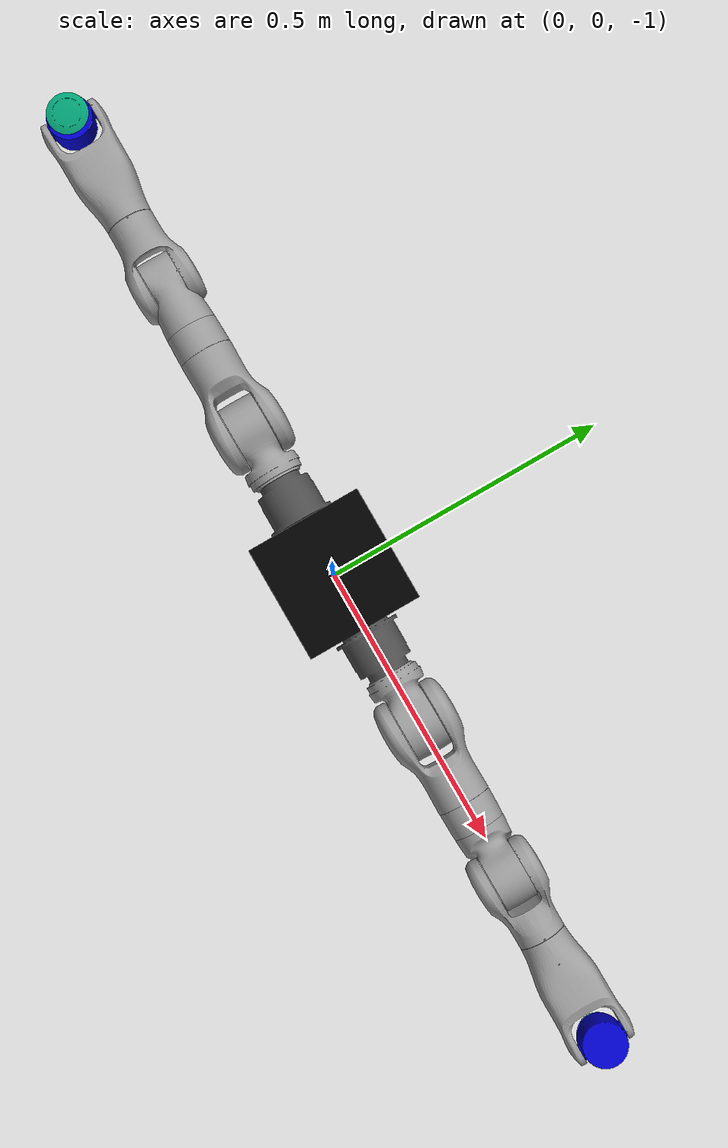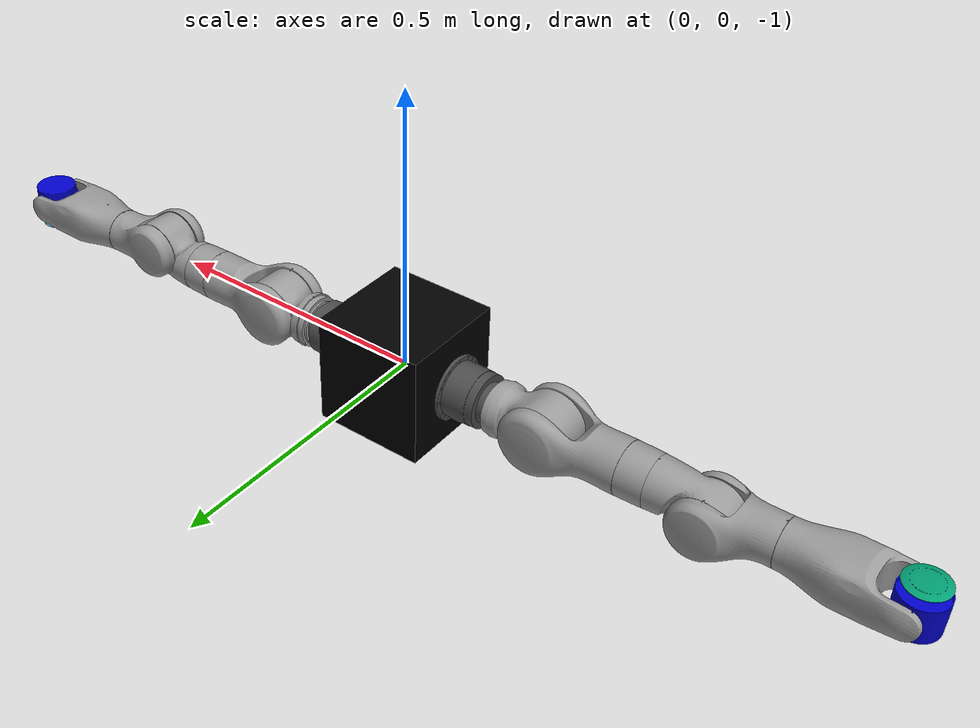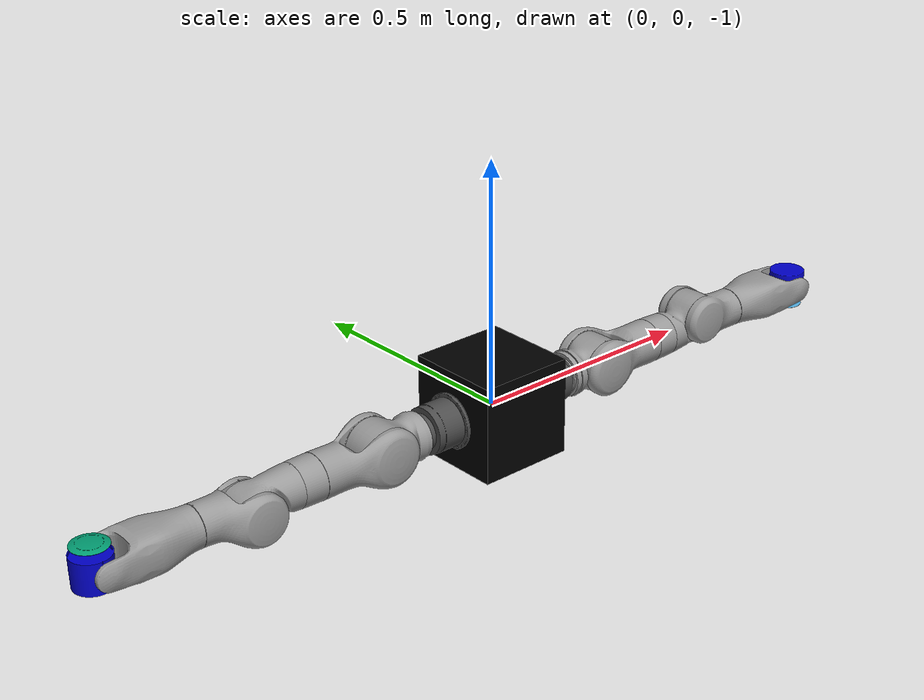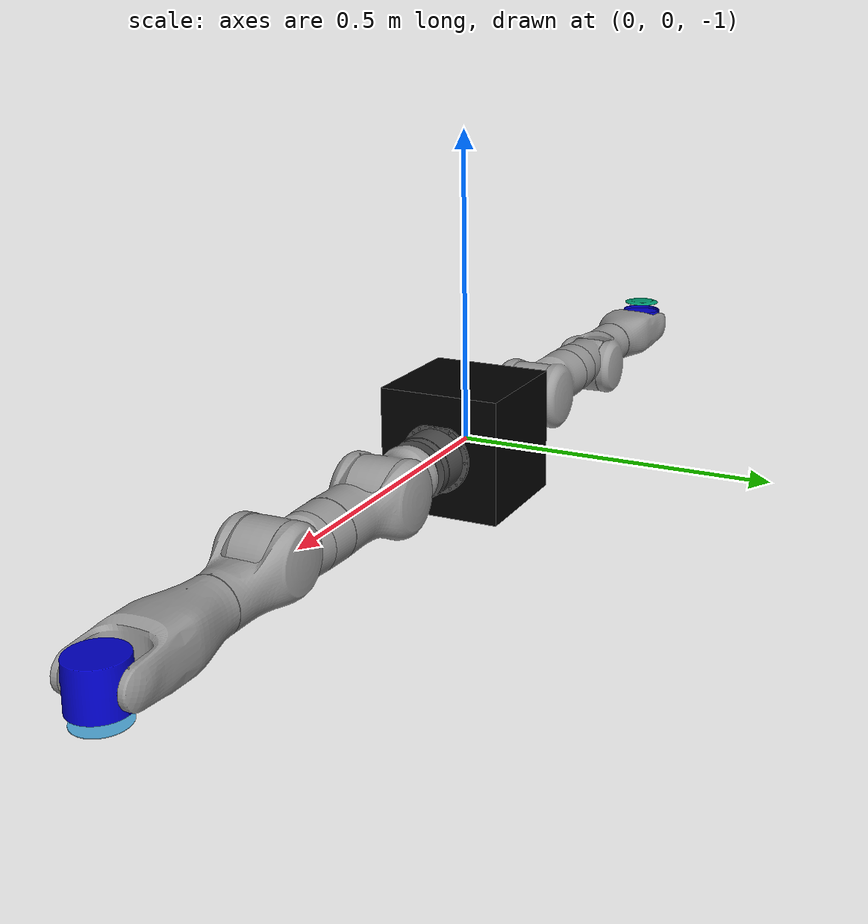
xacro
<?xml version="1.0"?>
<robot xmlns:xacro="http://www.ros.org/wiki/xacro" name="dual_arm">
    <xacro:arg name="initial_positions_file" default="initial_positions.yaml" />

    <!-- Import dual_arm urdf file (no Gazebo ros2_control; MoveIt adds mock hardware below) -->
    <xacro:include filename="$(find dual_arm_description)/urdf/dual_arm.urdf.xacro"/>

    <!-- Import control_xacro -->
    <xacro:include filename="dual_arm.ros2_control.xacro" />

    <xacro:dual_arm_ros2_control name="FakeSystem" initial_positions_file="$(arg initial_positions_file)"/>

</robot>

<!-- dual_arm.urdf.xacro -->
<robot xmlns:xacro="http://www.ros.org/wiki/xacro" name="dual_arm">

  <xacro:arg name="use_gazebo_control" default="false"/>

  <link name="world"/>

    <!-- Central Base -->

  <link name="central_base">
    <visual>
      <origin xyz="0 0 1.0" rpy="0 0 0"/>
      <geometry>
        <box size="0.2 0.2 0.2"/>  <!-- 20cm x 40cm x 10cm metal base -->
      </geometry>
      <material name="black">
        <ambient>0 0 0 1</ambient>
        <diffuse>0 0 0 1</diffuse>
      </material>
    </visual>

    <collision>
      <origin xyz="0 0 1.0" />
      <geometry>
        <box size="0.2 0.2 0.2"/>
      </geometry>
    </collision>
  </link>
  <gazebo reference="central_base">
    <material>
      <ambient>0.0 0.0 0.0 1</ambient>
      <diffuse>0.0 0.0 0.0 1</diffuse>
      <specular>0.1 0.1 0.1 1</specular>
      <emissive>0.0 0.0 0.0 1</emissive>
    </material>
  </gazebo>

  <!-- Fix central base to world -->
  <joint name="world_to_central_base" type="fixed">
    <parent link="world"/>
    <child link="central_base"/>
    <origin xyz="0 0 0" rpy="0 3.14 0"/>
  </joint>

  <!-- Left robot mounted 10cm left -->
  <xacro:include filename="$(find dual_arm_description)/urdf/left_arm.xacro"/>
  <joint name="central_to_left_base" type="fixed">
    <parent link="central_base"/>
    <child link="left_base"/>
    <origin xyz="-0.105 0.0 1.0" rpy="0.0 -1.57 0.0"/>
  </joint>

  <!-- Right robot mounted 10cm right -->
  <xacro:include filename="$(find dual_arm_description)/urdf/right_arm.xacro"/>
  <joint name="central_to_right_base" type="fixed">
    <parent link="central_base"/>
    <child link="right_base"/>
    <origin xyz="0.105 0.0 1.0" rpy="0 1.57 0"/>
  </joint>

  <!-- Import all robot parts -->
  <xacro:include filename="$(find dual_arm_description)/urdf/materials.xacro" />
  <xacro:if value="$(arg use_gazebo_control)">
    <xacro:include filename="$(find dual_arm_description)/urdf/ros2_gazebo_control.xacro" />
  </xacro:if>

</robot>

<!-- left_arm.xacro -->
<xacro:include xmlns:xacro="http://www.ros.org/wiki/xacro">

  <xacro:macro name="left_arm">
    <inertial>
      <mass value="0.1"/>
      <inertia ixx="1e-4" ixy="0" ixz="0" iyy="1e-4" iyz="0" izz="1e-4"/>
    </inertial>
  </xacro:macro>

  <link name="left_base">
    <visual>
      <geometry>
        <mesh filename="file://$(find dual_arm_description)/meshes/BASE_Mesh.obj"/>
      </geometry>
      <material name="dark_grey"/>
    </visual>
    <collision>
      <geometry>
        <mesh filename="file://$(find dual_arm_description)/meshes/BASE_Mesh.obj"/>
      </geometry>
    </collision>
    <xacro:left_arm/>
  </link>

  <!-- left Arm Links -->
  <link name="left_link1">
    <visual>
      <origin xyz="0.0000008 0 0"/>
      <geometry>
        <mesh filename="file://$(find dual_arm_description)/meshes/LINK1_Mesh.obj"/>
      </geometry>
      <material name="grey"/>
    </visual>
    <collision>
      <origin xyz="0.0000008 0 0"/>
      <geometry>
        <mesh filename="file://$(find dual_arm_description)/meshes/LINK1_Mesh.obj"/>
      </geometry>
    </collision>
    <xacro:left_arm/>
  </link>
  <joint name="left_joint1" type="revolute">
    <parent link="left_base"/>
    <child link="left_link1"/>
    <axis xyz="0 0 -1"/>
    <limit lower="-3.1066" upper="3.1066" effort="100" velocity="6.28"/>
  </joint>

  <link name="left_link2">
    <visual>
      <geometry><mesh filename="file://$(find dual_arm_description)/meshes/link2_Mesh.obj"/></geometry>
      <material name="grey"/>
    </visual>
    <collision>
      <geometry><mesh filename="file://$(find dual_arm_description)/meshes/link2_Mesh.obj"/></geometry>
    </collision>
    <xacro:left_arm/>
  </link>
  <joint name="left_joint2" type="revolute">
    <parent link="left_link1"/>
    <child link="left_link2"/>
    <origin xyz="0 0 0.1743"/>
    <axis xyz="0 -1 0"/>
    <limit lower="-2.0943" upper="2.0943" effort="100" velocity="6.28"/>
  </joint>

  <link name="left_link3">
    <visual>
      <origin rpy="0 0 3.1415"/>
      <geometry><mesh filename="file://$(find dual_arm_description)/meshes/LINK3_LOWER_Mesh.obj"/></geometry>
      <material name="grey"/>
    </visual>
    <visual>
      <origin rpy="0 0 3.1415"/>
      <geometry><mesh filename="file://$(find dual_arm_description)/meshes/LINK3_UPPER_Mesh.obj"/></geometry>
      <material name="grey"/>
    </visual>
    <collision>
      <origin rpy="0 0 3.1415"/>
      <geometry><mesh filename="file://$(find dual_arm_description)/meshes/LINK3_LOWER_Mesh.obj"/></geometry>
    </collision>
    <collision>
      <origin rpy="0 0 3.1415"/>
      <geometry><mesh filename="file://$(find dual_arm_description)/meshes/LINK3_UPPER_Mesh.obj"/></geometry>
    </collision>
    <xacro:left_arm/>
  </link>
  <joint name="left_joint3" type="revolute">
    <parent link="left_link2"/>
    <child link="left_link3"/>
    <axis xyz="0 0 1"/>
    <limit lower="-3.1066" upper="3.1066" effort="100" velocity="6.28"/>
  </joint>

  <link name="left_link4">
    <visual>
      <origin rpy="0 0 -3.1415"/>
      <geometry><mesh filename="file://$(find dual_arm_description)/meshes/LINK4_Mesh.obj"/></geometry>
      <material name="grey"/>
    </visual>
    <collision>
      <origin rpy="0 0 -3.1415"/>
      <geometry><mesh filename="file://$(find dual_arm_description)/meshes/LINK4_Mesh.obj"/></geometry>
    </collision>
    <xacro:left_arm/>
  </link>
  <joint name="left_joint4" type="revolute">
    <parent link="left_link3"/>
    <child link="left_link4"/>
    <origin xyz="-0.018 0 0.287"/>
    <axis xyz="0 1 0"/>
    <limit lower="-2.5307" upper="1.0471" effort="100" velocity="6.28"/>
  </joint>

  <link name="left_link5">
    <visual>
      <geometry><mesh filename="file://$(find dual_arm_description)/meshes/LINK5_Mesh.obj"/></geometry>
      <material name="grey"/>
    </visual>
    <collision>
      <geometry><mesh filename="file://$(find dual_arm_description)/meshes/LINK5_Mesh.obj"/></geometry>
    </collision>
    <xacro:left_arm/>
  </link>
  <joint name="left_joint5" type="revolute">
    <parent link="left_link4"/>
    <child link="left_link5"/>
    <origin xyz="0.018 0 0.314"/>
    <axis xyz="0 0 1"/>
    <limit lower="-3.1066" upper="3.1066" effort="100" velocity="6.28"/>
  </joint>

  <link name="left_link6">
    <visual>
      <geometry><mesh filename="file://$(find dual_arm_description)/meshes/LINK6_Mesh.obj"/></geometry>
      <material name="blue"/>
    </visual>
    <collision>
      <geometry><mesh filename="file://$(find dual_arm_description)/meshes/LINK6_Mesh.obj"/></geometry>
    </collision>
    <xacro:left_arm/>
  </link>
  <joint name="left_joint6" type="revolute">
    <parent link="left_link5"/>
    <child link="left_link6"/>
    <axis xyz="0 1 0"/>
    <limit lower="-1.0471" upper="1.0471" effort="100" velocity="6.28"/>
  </joint>

  <link name="left_ttt">
    <visual>
      <origin rpy="3.1415 -1.5707 0"/>
      <geometry><mesh filename="file://$(find dual_arm_description)/meshes/tn__T_Arm_MarvinM6SLCCS_WKe8HJ_01_Mesh.obj"/></geometry>
    </visual>
    <xacro:left_arm/>
  </link>
  <joint name="left_joint7" type="revolute">
    <parent link="left_link6"/>
    <child link="left_ttt"/>
    <axis xyz="1 0 0"/>
    <limit lower="-1.5707" upper="1.5707" effort="100" velocity="6.28"/>
  </joint>

  <link name="left_flange"/>
  <joint name="left_flange_joint" type="fixed">
    <parent link="left_ttt"/>
    <child link="left_flange"/>
    <origin xyz="0 0 0.088"/>
  </joint>

</xacro:include>

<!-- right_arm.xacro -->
<xacro:include xmlns:xacro="http://www.ros.org/wiki/xacro">

  <xacro:macro name="right_arm">
    <inertial>
      <mass value="0.1"/>
      <inertia ixx="1e-4" ixy="0" ixz="0" iyy="1e-4" iyz="0" izz="1e-4"/>
    </inertial>
  </xacro:macro>

  <link name="right_base">
    <visual>
      <geometry>
        <mesh filename="file://$(find dual_arm_description)/meshes/BASE_Mesh.obj"/>
      </geometry>
      <material name="dark_grey"/>
    </visual>
    <collision>
      <geometry>
        <mesh filename="file://$(find dual_arm_description)/meshes/BASE_Mesh.obj"/>
      </geometry>
    </collision>
    <xacro:right_arm/>
  </link>

  <!-- Right Arm Links -->
  <link name="right_link1">
    <visual>
      <origin xyz="0.0000008 0 0"/>
      <geometry>
        <mesh filename="file://$(find dual_arm_description)/meshes/LINK1_Mesh.obj"/>
      </geometry>
      <material name="grey"/>
    </visual>
    <collision>
      <origin xyz="0.0000008 0 0"/>
      <geometry>
        <mesh filename="file://$(find dual_arm_description)/meshes/LINK1_Mesh.obj"/>
      </geometry>
    </collision>
    <xacro:right_arm/>
  </link>
  <joint name="right_joint1" type="revolute">
    <parent link="right_base"/>
    <child link="right_link1"/>
    <axis xyz="0 0 -1"/>
    <limit lower="-3.1066" upper="3.1066" effort="100" velocity="6.28"/>
  </joint>

  <link name="right_link2">
    <visual>
      <geometry><mesh filename="file://$(find dual_arm_description)/meshes/link2_Mesh.obj"/></geometry>
      <material name="grey"/>
    </visual>
    <collision>
      <geometry><mesh filename="file://$(find dual_arm_description)/meshes/link2_Mesh.obj"/></geometry>
    </collision>
    <xacro:right_arm/>
  </link>
  <joint name="right_joint2" type="revolute">
    <parent link="right_link1"/>
    <child link="right_link2"/>
    <origin xyz="0 0 0.1743"/>
    <axis xyz="0 -1 0"/>
    <limit lower="-2.0943" upper="2.0943" effort="100" velocity="6.28"/>
  </joint>

  <link name="right_link3">
    <visual>
      <origin rpy="0 0 3.1415"/>
      <geometry><mesh filename="file://$(find dual_arm_description)/meshes/LINK3_LOWER_Mesh.obj"/></geometry>
      <material name="grey"/>
    </visual>
    <visual>
      <origin rpy="0 0 3.1415"/>
      <geometry><mesh filename="file://$(find dual_arm_description)/meshes/LINK3_UPPER_Mesh.obj"/></geometry>
      <material name="grey"/>
    </visual>
    <collision>
      <origin rpy="0 0 3.1415"/>
      <geometry><mesh filename="file://$(find dual_arm_description)/meshes/LINK3_LOWER_Mesh.obj"/></geometry>
    </collision>
    <collision>
      <origin rpy="0 0 3.1415"/>
      <geometry><mesh filename="file://$(find dual_arm_description)/meshes/LINK3_UPPER_Mesh.obj"/></geometry>
    </collision>
    <xacro:right_arm/>
  </link>
  <joint name="right_joint3" type="revolute">
    <parent link="right_link2"/>
    <child link="right_link3"/>
    <axis xyz="0 0 -1"/>
    <limit lower="-3.1066" upper="3.1066" effort="100" velocity="6.28"/>
  </joint>

  <link name="right_link4">
    <visual>
      <origin rpy="0 0 -3.1415"/>
      <geometry><mesh filename="file://$(find dual_arm_description)/meshes/LINK4_Mesh.obj"/></geometry>
      <material name="grey"/>
    </visual>
    <collision>
      <origin rpy="0 0 -3.1415"/>
      <geometry><mesh filename="file://$(find dual_arm_description)/meshes/LINK4_Mesh.obj"/></geometry>
    </collision>
    <xacro:right_arm/>
  </link>
  <joint name="right_joint4" type="revolute">
    <parent link="right_link3"/>
    <child link="right_link4"/>
    <origin xyz="-0.018 0 0.287"/>
    <axis xyz="0 -1 0"/>
    <limit lower="-2.5307" upper="1.0471" effort="100" velocity="6.28"/>
  </joint>

  <link name="right_link5">
    <visual>
      <geometry><mesh filename="file://$(find dual_arm_description)/meshes/LINK5_Mesh.obj"/></geometry>
      <material name="grey"/>
    </visual>
    <collision>
      <geometry><mesh filename="file://$(find dual_arm_description)/meshes/LINK5_Mesh.obj"/></geometry>
    </collision>
    <xacro:right_arm/>
  </link>
  <joint name="right_joint5" type="revolute">
    <parent link="right_link4"/>
    <child link="right_link5"/>
    <origin xyz="0.018 0 0.314"/>
    <axis xyz="0 0 -1"/>
    <limit lower="-3.1066" upper="3.1066" effort="100" velocity="6.28"/>
  </joint>

  <link name="right_link6">
    <visual>
      <geometry><mesh filename="file://$(find dual_arm_description)/meshes/LINK6_Mesh.obj"/></geometry>
      <material name="blue"/>
    </visual>
    <collision>
      <geometry><mesh filename="file://$(find dual_arm_description)/meshes/LINK6_Mesh.obj"/></geometry>
    </collision>
    <xacro:right_arm/>
  </link>
  <joint name="right_joint6" type="revolute">
    <parent link="right_link5"/>
    <child link="right_link6"/>
    <axis xyz="0 -1 0"/>
    <limit lower="-1.0471" upper="1.0471" effort="100" velocity="6.28"/>
  </joint>

  <link name="right_ttt">
    <visual>
      <origin rpy="3.1415 -1.5707 0"/>
      <geometry><mesh filename="file://$(find dual_arm_description)/meshes/tn__T_Arm_MarvinM6SLCCS_WKe8HJ_01_Mesh.obj"/></geometry>
    </visual>
    <xacro:right_arm/>
  </link>
  <joint name="right_joint7" type="revolute">
    <parent link="right_link6"/>
    <child link="right_ttt"/>
    <axis xyz="-1 0 0"/>
    <limit lower="-1.5707" upper="1.5707" effort="100" velocity="6.28"/>
  </joint>

  <link name="right_flange"/>
  <joint name="right_flange_joint" type="fixed">
    <parent link="right_ttt"/>
    <child link="right_flange"/>
    <origin xyz="0 0 0.088"/>
  </joint>

</xacro:include>

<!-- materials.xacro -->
<robot xmlns:xacro="http://www.ros.org/wiki/xacro">

  <material name="grey">
    <color rgba="0.6 0.6 0.6 1.0"/>
  </material>

  <material name="dark_grey">
    <color rgba="0.3 0.3 0.3 1.0"/>
  </material>

  <material name="blue">
    <color rgba="0.0 0.0 0.8 1.0"/>
  </material>

  <material name="white">
    <color rgba="0.0 0.0 0.0 0.0"/>
  </material>

  <material name="black">
    <color rgba="0.0 0.0 0.0 1.0"/>
  </material>
</robot>
